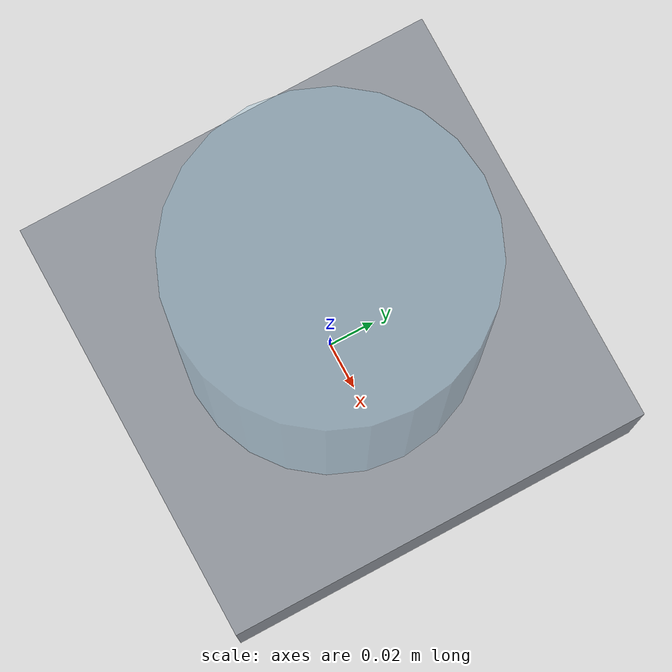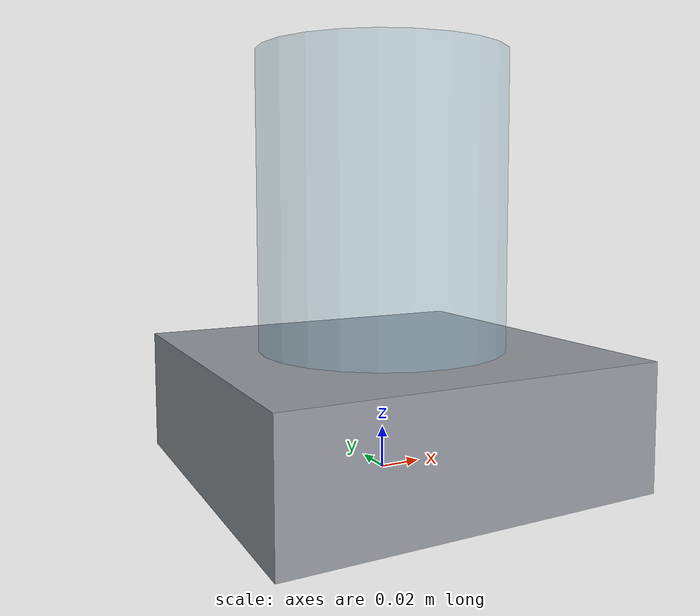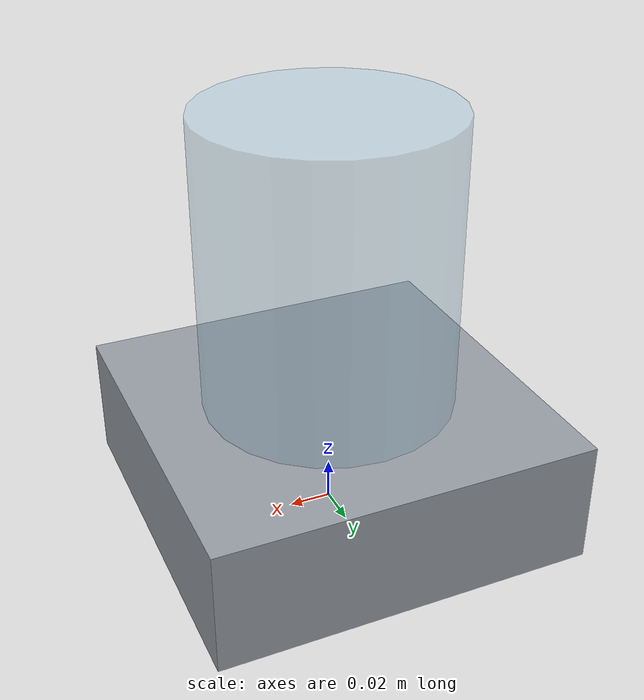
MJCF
<?xml version="1.0" encoding="utf-8"?>
<mujoco model="sputter_coater">
  <compiler angle="radian" autolimits="true"/>
  <default>
    <default class="body"><geom contype="1" conaffinity="1"/></default>
  </default>
  <worldbody>
    <body name="base">
      <geom type="box" size="0.09 0.09 0.03" pos="0 0 0.03" rgba="0.6 0.62 0.65 1" class="body"/>
      <body name="bell_jar" pos="0 0 0.10">
        <joint name="bell_jar_joint" type="slide" axis="0 0 1" range="0 0.12" damping="1.0" frictionloss="0.3"/>
  <geom type="cylinder" size="0.06 0.10" pos="0 0 0" rgba="0.6 0.8 0.9 0.35" class="body"/>
      </body>
    </body>
  </worldbody>
</mujoco>
